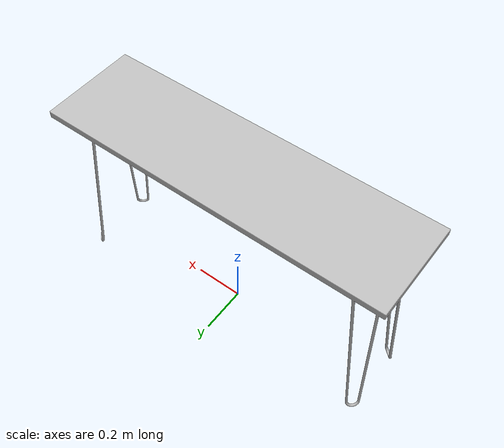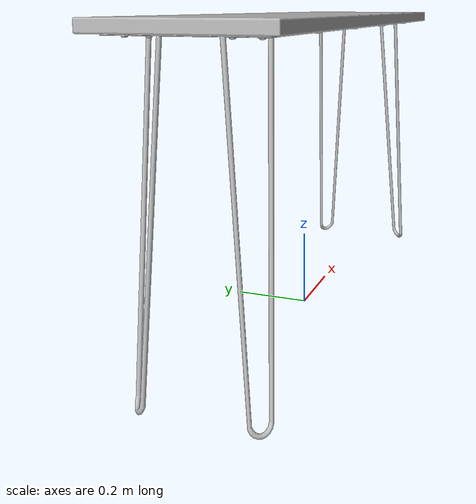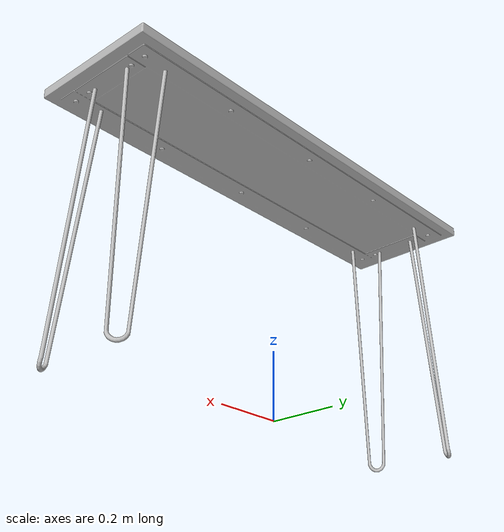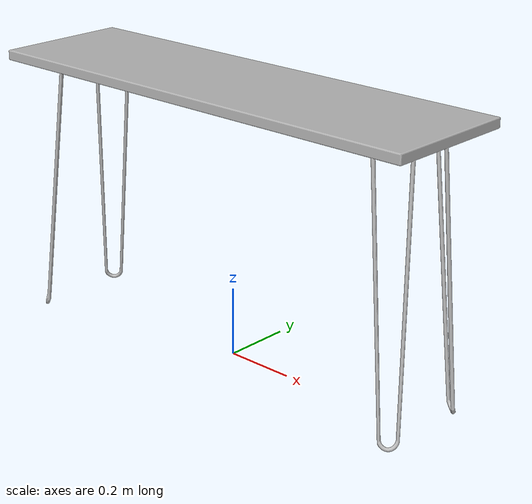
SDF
<sdf version="1.6">
	<model name="SofaTables_O37bb89b6452b_lod0">
		<link name="main_link">
			<visual name="visual_RootNode">
				<geometry>
					<mesh>
						<uri>model://SofaTables_O37bb89b6452b_lod0/meshes/visual_RootNode.dae</uri>
					</mesh>
				</geometry>
			</visual>
			<collision name="collision_RootNode_lod0_0">
				<geometry>
					<mesh>
						<uri>model://SofaTables_O37bb89b6452b_lod0/meshes/collision_RootNode_lod0_0.dae</uri>
					</mesh>
				</geometry>
			</collision>
		</link>
	</model>
</sdf>
